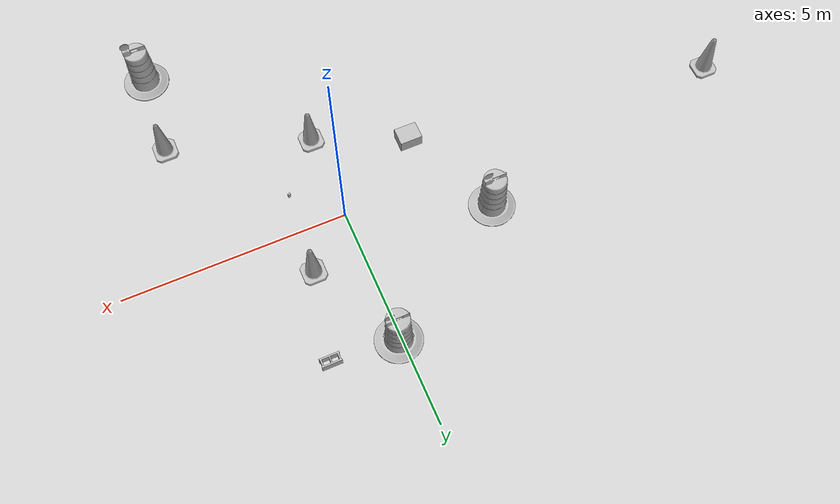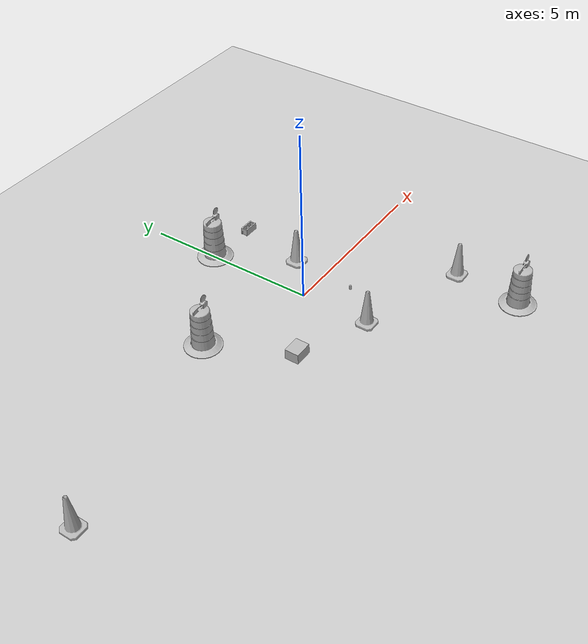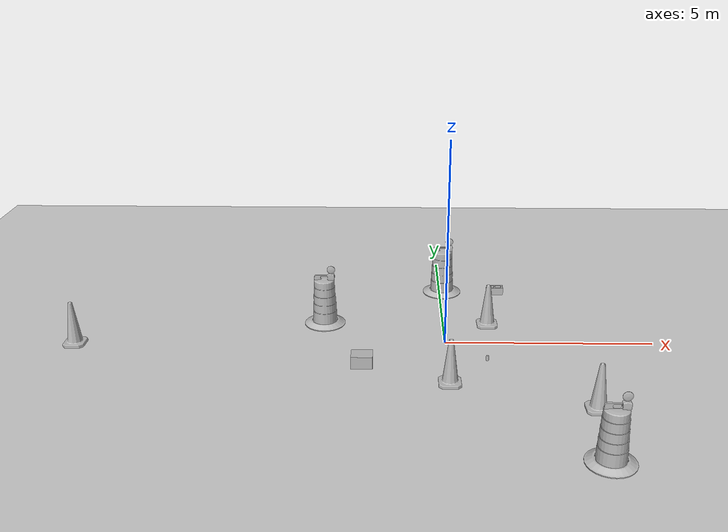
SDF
<sdf version="1.7">
 <world name="default">
  <light name="sun" type="directional">
   <pose>0 0 10 0 -0 0</pose>
   <diffuse>0.8 0.8 0.8 1</diffuse>
   <specular>0.2 0.2 0.2 1</specular>
   <attenuation>
    <range>1000</range>
    <constant>0.9</constant>
    <linear>0.01</linear>
    <quadratic>0.001</quadratic>
   </attenuation>
   <direction>-0.5 0.1 -0.9</direction>
   <spot><inner_angle>0</inner_angle><outer_angle>0</outer_angle><falloff>0</falloff></spot>
  </light>
  <model name="ground_plane">
   <static>1</static>
   <link name="link">
    <collision name="collision">
     <geometry><plane><normal>0 0 1</normal><size>100 100</size></plane></geometry>
     <surface>
      <contact><collide_bitmask>65535</collide_bitmask></contact>
      <friction><ode><mu>100</mu><mu2>50</mu2></ode></friction>
     </surface>
    </collision>
    <visual name="visual">
     <cast_shadows>0</cast_shadows>
     <geometry><plane><normal>0 0 1</normal><size>100 100</size></plane></geometry>
     <material>
      <script><uri>file://media/materials/scripts/gazebo.material</uri><name>Gazebo/Grey</name></script>
     </material>
    </visual>
   </link>
  </model>
  <gravity>0 0 -9.8</gravity>
  <magnetic_field>6e-06 2.3e-05 -4.2e-05</magnetic_field>
  <atmosphere type="adiabatic"/>
  <physics type="ode">
   <max_step_size>0.001</max_step_size>
   <real_time_factor>1</real_time_factor>
   <real_time_update_rate>1000</real_time_update_rate>
  </physics>
  <scene><ambient>0.4 0.4 0.4 1</ambient><background>0.7 0.7 0.7 1</background><shadows>1</shadows></scene>
  <audio><device>default</device></audio>
  <spherical_coordinates>
   <surface_model>EARTH_WGS84</surface_model>
   <latitude_deg>0</latitude_deg>
   <longitude_deg>0</longitude_deg>
   <elevation>0</elevation>
   <heading_deg>0</heading_deg>
  </spherical_coordinates>
  <model name="Construction Cone">
   <link name="link">
    <collision name="collision">
     <geometry>
      <mesh><scale>10 10 10</scale><uri>model://construction_cone/meshes/construction_cone.dae</uri></mesh>
     </geometry>
    </collision>
    <visual name="visual">
     <geometry>
      <mesh><scale>10 10 10</scale><uri>model://construction_cone/meshes/construction_cone.dae</uri></mesh>
     </geometry>
    </visual>
    <inertial>
     <inertia><ixx>1</ixx><ixy>0</ixy><ixz>0</ixz><iyy>1</iyy><iyz>0</iyz><izz>1</izz></inertia>
     <mass>1</mass>
    </inertial>
   </link>
   <pose>0.005178 -1.99771 0 -0 -0 -0</pose>
  </model>
  <model name="Construction Barrel">
   <link name="link">
    <inertial>
     <pose>0 0 0.4 0 -0 0</pose>
     <mass>500</mass>
     <inertia><ixx>51.2096</ixx><iyy>51.2096</iyy><izz>25</izz><ixy>0</ixy><ixz>0</ixz><iyz>0</iyz></inertia>
    </inertial>
    <collision name="collision">
     <geometry><mesh><uri>model://construction_barrel/meshes/construction_barrel.dae</uri></mesh></geometry>
    </collision>
    <visual name="visual">
     <geometry><mesh><uri>model://construction_barrel/meshes/construction_barrel.dae</uri></mesh></geometry>
    </visual>
   </link>
   <pose>-2.98031 1.0458 0 0 0 -2.1e-05</pose>
  </model>
  <model name="Construction Cone_0">
   <link name="link">
    <collision name="collision">
     <geometry>
      <mesh><scale>10 10 10</scale><uri>model://construction_cone/meshes/construction_cone.dae</uri></mesh>
     </geometry>
    </collision>
    <visual name="visual">
     <geometry>
      <mesh><scale>10 10 10</scale><uri>model://construction_cone/meshes/construction_cone.dae</uri></mesh>
     </geometry>
    </visual>
    <inertial>
     <inertia><ixx>1</ixx><ixy>0</ixy><ixz>0</ixz><iyy>1</iyy><iyz>0</iyz><izz>1</izz></inertia>
     <mass>1</mass>
    </inertial>
   </link>
   <pose>1.10325 0.987105 -0 0 -0 0</pose>
  </model>
  <model name="Construction Cone_1">
   <link name="link">
    <collision name="collision">
     <geometry>
      <mesh><scale>10 10 10</scale><uri>model://construction_cone/meshes/construction_cone.dae</uri></mesh>
     </geometry>
    </collision>
    <visual name="visual">
     <geometry>
      <mesh><scale>10 10 10</scale><uri>model://construction_cone/meshes/construction_cone.dae</uri></mesh>
     </geometry>
    </visual>
    <inertial>
     <inertia><ixx>1</ixx><ixy>0</ixy><ixz>0</ixz><iyy>1</iyy><iyz>0</iyz><izz>1</izz></inertia>
     <mass>1</mass>
    </inertial>
   </link>
   <pose>3.04803 -3.03317 -0 0 -1e-06 0</pose>
  </model>
  <model name="coke_can">
   <link name="link">
    <inertial>
     <pose>0 0 0.06 0 -0 0</pose>
     <mass>0.39</mass>
     <inertia>
      <ixx>0.00055575</ixx>
      <ixy>0</ixy>
      <ixz>0</ixz>
      <iyy>0.00055575</iyy>
      <iyz>0</iyz>
      <izz>0.0001755</izz>
     </inertia>
    </inertial>
    <collision name="collision">
     <pose>0.003937 0.004724 -0.18 0 -0 0</pose>
     <geometry><mesh><uri>model://coke_can/meshes/coke_can.dae</uri></mesh></geometry>
     <surface>
      <friction><ode><mu>1</mu><mu2>1</mu2></ode></friction>
      <contact><ode><kp>1e+07</kp><kd>1</kd><min_depth>0.001</min_depth><max_vel>0.1</max_vel></ode></contact>
     </surface>
    </collision>
    <visual name="visual">
     <pose>0.003937 0.004724 -0.18 0 -0 0</pose>
     <geometry><mesh><uri>model://coke_can/meshes/coke_can.dae</uri></mesh></geometry>
    </visual>
   </link>
   <pose>0.939637 -0.898708 -0.00304 -0.060665 -0.014931 -0.000647</pose>
  </model>
  <model name="Construction Barrel_0">
   <link name="link">
    <inertial>
     <pose>0 0 0.4 0 -0 0</pose>
     <mass>500</mass>
     <inertia><ixx>51.2096</ixx><iyy>51.2096</iyy><izz>25</izz><ixy>0</ixy><ixz>0</ixz><iyz>0</iyz></inertia>
    </inertial>
    <collision name="collision">
     <geometry><mesh><uri>model://construction_barrel/meshes/construction_barrel.dae</uri></mesh></geometry>
    </collision>
    <visual name="visual">
     <geometry><mesh><uri>model://construction_barrel/meshes/construction_barrel.dae</uri></mesh></geometry>
    </visual>
   </link>
   <pose>0.061825 3.06121 -2e-06 7e-06 -4e-06 -2.2e-05</pose>
  </model>
  <model name="cardboard_box">
   <pose>-1.97504 -1.16591 0.149 0 -0 0</pose>
   <link name="link">
    <inertial>
     <mass>2</mass>
     <inertia>
      <ixx>0.0416667</ixx>
      <ixy>0</ixy>
      <ixz>0</ixz>
      <iyy>0.0566667</iyy>
      <iyz>0</iyz>
      <izz>0.0683333</izz>
     </inertia>
    </inertial>
    <collision name="collision">
     <geometry><box><size>0.5 0.4 0.3</size></box></geometry>
     <surface>
      <friction><ode><mu>1</mu><mu2>1</mu2></ode></friction>
      <contact><ode><kp>1e+07</kp><kd>1</kd><min_depth>0.001</min_depth><max_vel>0.1</max_vel></ode></contact>
     </surface>
    </collision>
    <visual name="visual">
     <pose>0 0 -0.15 0 -0 0</pose>
     <geometry>
      <mesh><uri>model://cardboard_box/meshes/cardboard_box.dae</uri><scale>1.25932 1.00745 0.755591</scale></mesh>
     </geometry>
    </visual>
   </link>
  </model>
  <model name="Construction Cone_2">
   <link name="link">
    <collision name="collision">
     <geometry>
      <mesh><scale>10 10 10</scale><uri>model://construction_cone/meshes/construction_cone.dae</uri></mesh>
     </geometry>
    </collision>
    <visual name="visual">
     <geometry>
      <mesh><scale>10 10 10</scale><uri>model://construction_cone/meshes/construction_cone.dae</uri></mesh>
     </geometry>
    </visual>
    <inertial>
     <inertia><ixx>1</ixx><ixy>0</ixy><ixz>0</ixz><iyy>1</iyy><iyz>0</iyz><izz>1</izz></inertia>
     <mass>1</mass>
    </inertial>
   </link>
   <pose>-8.93061 -0.215484 -0 0 -1e-06 0</pose>
  </model>
  <model name="Construction Barrel_1">
   <link name="link">
    <inertial>
     <pose>0 0 0.4 0 -0 0</pose>
     <mass>500</mass>
     <inertia><ixx>51.2096</ixx><iyy>51.2096</iyy><izz>25</izz><ixy>0</ixy><ixz>0</ixz><iyz>0</iyz></inertia>
    </inertial>
    <collision name="collision">
     <geometry><mesh><uri>model://construction_barrel/meshes/construction_barrel.dae</uri></mesh></geometry>
    </collision>
    <visual name="visual">
     <geometry><mesh><uri>model://construction_barrel/meshes/construction_barrel.dae</uri></mesh></geometry>
    </visual>
   </link>
   <pose>2.88797 -4.94555 -3e-06 6e-06 1.1e-05 -7e-06</pose>
  </model>
  <model name="cinder_block">
   <link name="link">
    <inertial>
     <pose>0 0 0.1016 0 -0 0</pose>
     <mass>5</mass>
     <inertia>
      <ixx>0.028705</ixx>
      <ixy>0</ixy>
      <iyy>0.073708</iyy>
      <ixz>0</ixz>
      <iyz>0</iyz>
      <izz>0.06908</izz>
     </inertia>
    </inertial>
    <visual name="visual">
     <geometry><mesh><uri>model://cinder_block/meshes/cinder_block.dae</uri></mesh></geometry>
    </visual>
    <collision name="left">
     <pose>0 -0.08465 0.1016 0 -0 0</pose>
     <geometry><box><size>0.43495 0.0339 0.2032</size></box></geometry>
     <surface>
      <contact><ode><max_vel>0.1</max_vel><min_depth>0.001</min_depth></ode></contact>
      <friction><ode><mu>1</mu><mu2>1</mu2></ode></friction>
     </surface>
    </collision>
    <collision name="right">
     <pose>0 0.08465 0.1016 0 -0 0</pose>
     <geometry><box><size>0.43495 0.0339 0.2032</size></box></geometry>
     <surface>
      <contact><ode><max_vel>0.1</max_vel><min_depth>0.001</min_depth></ode></contact>
      <friction><ode><mu>1</mu><mu2>1</mu2></ode></friction>
     </surface>
    </collision>
    <collision name="front">
     <pose>0.18625 0 0.1016 0 -0 0</pose>
     <geometry><box><size>0.0339 0.1354 0.203</size></box></geometry>
     <surface>
      <contact><ode><max_vel>0.1</max_vel><min_depth>0.001</min_depth></ode></contact>
      <friction><ode><mu>1</mu><mu2>1</mu2></ode></friction>
     </surface>
    </collision>
    <collision name="middle">
     <pose>0 0 0.1016 0 -0 0</pose>
     <geometry><box><size>0.0339 0.1354 0.203</size></box></geometry>
     <surface>
      <contact><ode><max_vel>0.1</max_vel><min_depth>0.001</min_depth></ode></contact>
      <friction><ode><mu>1</mu><mu2>1</mu2></ode></friction>
     </surface>
    </collision>
    <collision name="back">
     <pose>-0.18625 0 0.1016 0 -0 0</pose>
     <geometry><box><size>0.0339 0.1354 0.203</size></box></geometry>
     <surface>
      <contact><ode><max_vel>0.1</max_vel><min_depth>0.001</min_depth></ode></contact>
      <friction><ode><mu>1</mu><mu2>1</mu2></ode></friction>
     </surface>
    </collision>
   </link>
   <pose>1.49733 2.96114 -1.2e-05 0 -1e-06 0</pose>
  </model>
 </world>
</sdf>
